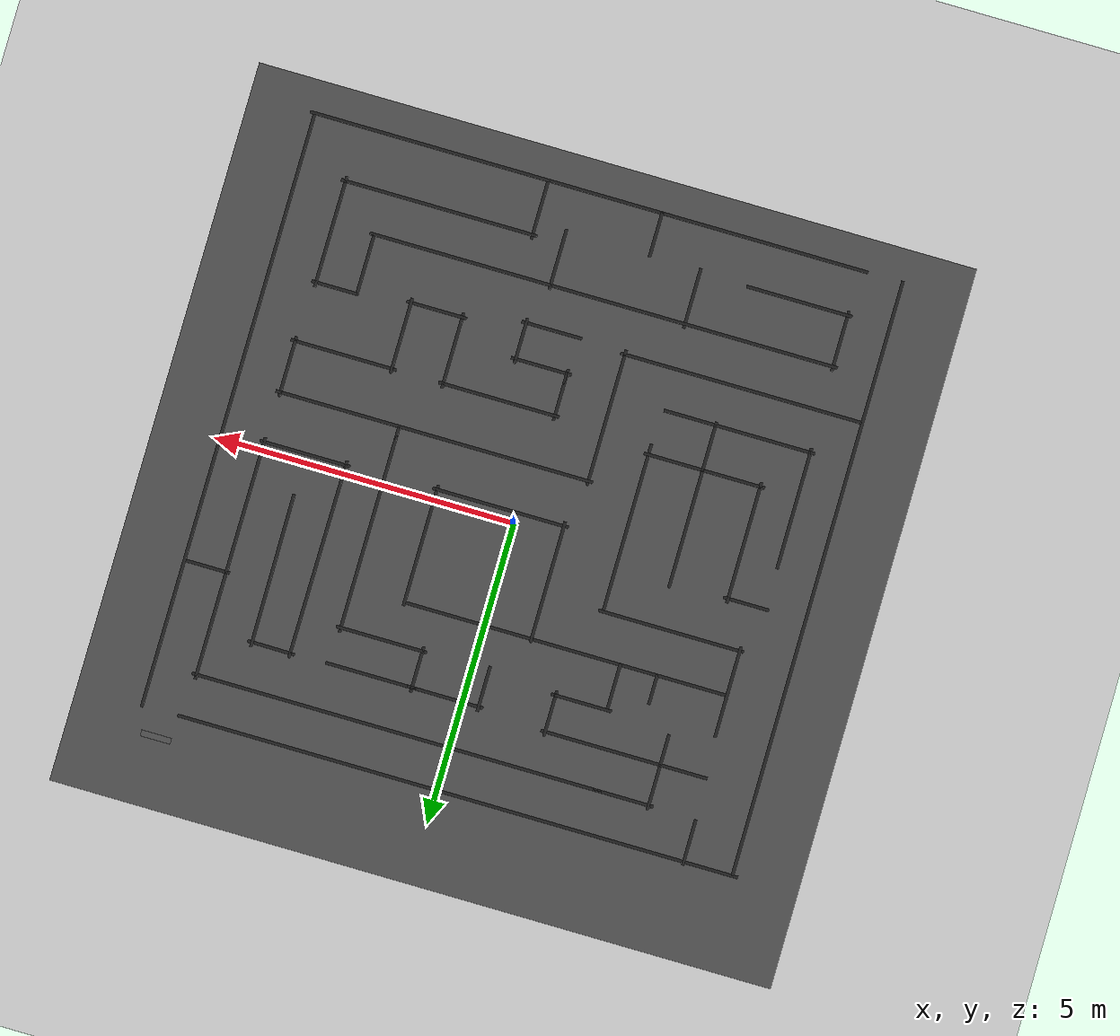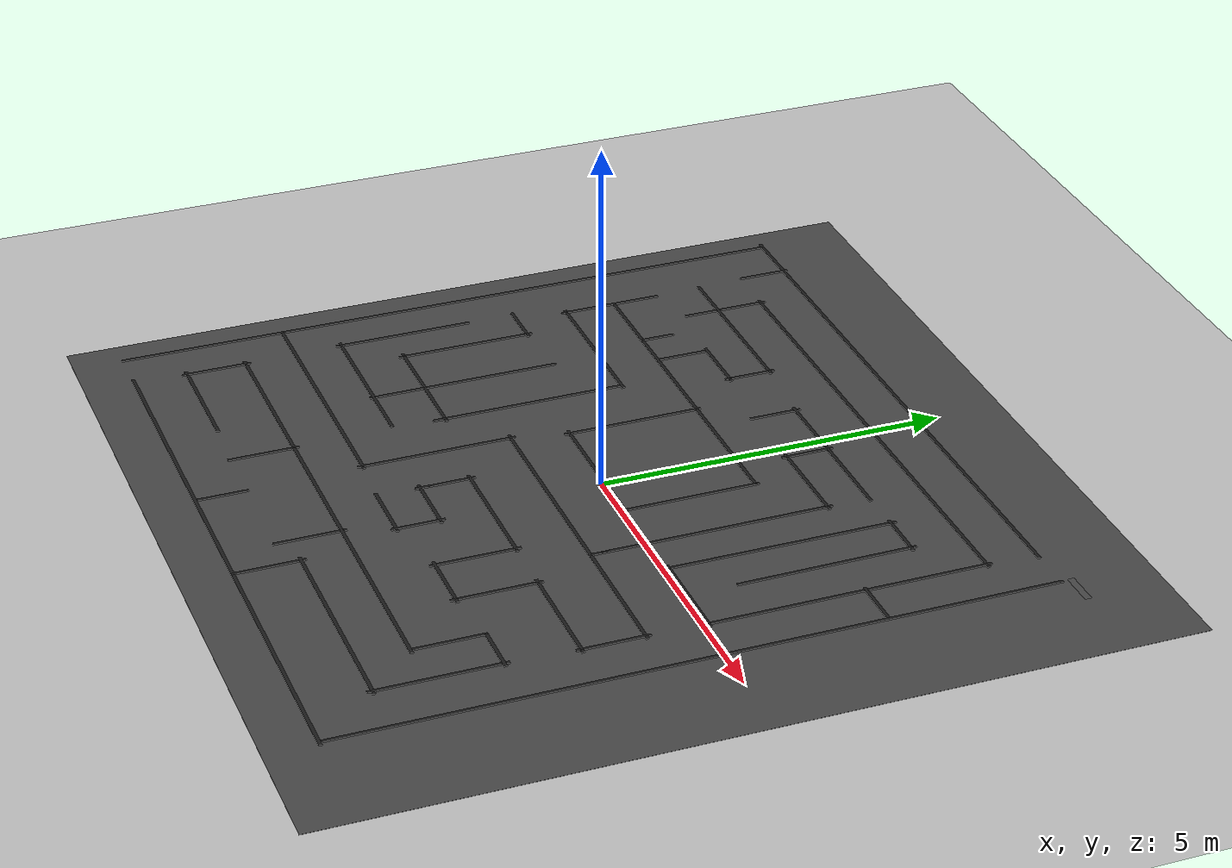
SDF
<sdf version="1.6">
 <world name="default">
  <model name="ground_plane">
   <static>1</static>
   <link name="link">
    <collision name="collision">
     <geometry><plane><normal>0 0 1</normal><size>100 100</size></plane></geometry>
     <surface><friction><ode><mu>100</mu><mu2>50</mu2></ode></friction></surface>
    </collision>
    <visual name="visual">
     <cast_shadows>0</cast_shadows>
     <geometry><plane><normal>0 0 1</normal><size>100 100</size></plane></geometry>
     <material>
      <script><uri>file://media/materials/scripts/gazebo.material</uri><name>Gazebo/Grey</name></script>
     </material>
    </visual>
   </link>
  </model>
  <model name="10x10_maze_1_top">
   <pose>0 -0.5 0.4 0 -0 0</pose>
   <link name="Wall_0">
    <collision name="Wall_0_Collision">
     <geometry><box><size>9.83 0.05 0.01</size></box></geometry>
     <pose>0 0 0.005 0 -0 0</pose>
    </collision>
    <visual name="Wall_0_Visual">
     <pose>0 0 0.005 0 -0 0</pose>
     <geometry><box><size>9.83 0.05 0.01</size></box></geometry>
     <material>
      <script><uri>file://media/materials/scripts/gazebo.material</uri><name>Gazebo/Black</name></script>
      <ambient>0 0 0 1</ambient>
     </material>
    </visual>
    <pose>-4.87625 -0.01472 0 0 0 -1.5708</pose>
   </link>
   <link name="Wall_103">
    <collision name="Wall_103_Collision">
     <geometry><box><size>0.5 0.05 0.01</size></box></geometry>
     <pose>0 0 0.005 0 -0 0</pose>
    </collision>
    <visual name="Wall_103_Visual">
     <pose>0 0 0.005 0 -0 0</pose>
     <geometry><box><size>0.5 0.05 0.01</size></box></geometry>
     <material>
      <script><uri>file://media/materials/scripts/gazebo.material</uri><name>Gazebo/Black</name></script>
      <ambient>0 0 0 1</ambient>
     </material>
    </visual>
    <pose>-2.85325 2.41853 0 0 -0 1.5708</pose>
   </link>
   <link name="Wall_106">
    <collision name="Wall_106_Collision">
     <geometry><box><size>6.77039 0.05 0.01</size></box></geometry>
     <pose>0 0 0.005 0 -0 0</pose>
    </collision>
    <visual name="Wall_106_Visual">
     <pose>0 0 0.005 0 -0 0</pose>
     <geometry><box><size>6.77039 0.05 0.01</size></box></geometry>
     <material>
      <script><uri>file://media/materials/scripts/gazebo.material</uri><name>Gazebo/Black</name></script>
      <ambient>0 0 0 1</ambient>
     </material>
    </visual>
    <pose>0.865745 4.20453 0 0 -0 0</pose>
   </link>
   <link name="Wall_107">
    <collision name="Wall_107_Collision">
     <geometry><box><size>4 0.05 0.01</size></box></geometry>
     <pose>0 0 0.005 0 -0 0</pose>
    </collision>
    <visual name="Wall_107_Visual">
     <pose>0 0 0.005 0 -0 0</pose>
     <geometry><box><size>4 0.05 0.01</size></box></geometry>
     <material>
      <script><uri>file://media/materials/scripts/gazebo.material</uri><name>Gazebo/Black</name></script>
      <ambient>0 0 0 1</ambient>
     </material>
    </visual>
    <pose>4.17575 2.27953 0 0 0 -1.5708</pose>
   </link>
   <link name="Wall_108">
    <collision name="Wall_108_Collision">
     <geometry><box><size>1.5 0.05 0.01</size></box></geometry>
     <pose>0 0 0.005 0 -0 0</pose>
    </collision>
    <visual name="Wall_108_Visual">
     <pose>0 0 0.005 0 -0 0</pose>
     <geometry><box><size>1.5 0.05 0.01</size></box></geometry>
     <material>
      <script><uri>file://media/materials/scripts/gazebo.material</uri><name>Gazebo/Black</name></script>
      <ambient>0 0 0 1</ambient>
     </material>
    </visual>
    <pose>3.50075 0.354528 0 0 -0 3.14159</pose>
   </link>
   <link name="Wall_109">
    <collision name="Wall_109_Collision">
     <geometry><box><size>3.26525 0.05 0.01</size></box></geometry>
     <pose>0 0 0.005 0 -0 0</pose>
    </collision>
    <visual name="Wall_109_Visual">
     <pose>0 0 0.005 0 -0 0</pose>
     <geometry><box><size>3.26525 0.05 0.01</size></box></geometry>
     <material>
      <script><uri>file://media/materials/scripts/gazebo.material</uri><name>Gazebo/Black</name></script>
      <ambient>0 0 0 1</ambient>
     </material>
    </visual>
    <pose>2.83324 1.91203 0 0 -0 1.56598</pose>
   </link>
   <link name="Wall_110">
    <collision name="Wall_110_Collision">
     <geometry><box><size>0.779601 0.05 0.01</size></box></geometry>
     <pose>0 0 0.005 0 -0 0</pose>
    </collision>
    <visual name="Wall_110_Visual">
     <pose>0 0 0.005 0 -0 0</pose>
     <geometry><box><size>0.779601 0.05 0.01</size></box></geometry>
     <material>
      <script><uri>file://media/materials/scripts/gazebo.material</uri><name>Gazebo/Black</name></script>
      <ambient>0 0 0 1</ambient>
     </material>
    </visual>
    <pose>3.15575 3.46703 0 0 0 -0.007936</pose>
   </link>
   <link name="Wall_111">
    <collision name="Wall_111_Collision">
     <geometry><box><size>2.51521 0.05 0.01</size></box></geometry>
     <pose>0 0 0.005 0 -0 0</pose>
    </collision>
    <visual name="Wall_111_Visual">
     <pose>0 0 0.005 0 -0 0</pose>
     <geometry><box><size>2.51521 0.05 0.01</size></box></geometry>
     <material>
      <script><uri>file://media/materials/scripts/gazebo.material</uri><name>Gazebo/Black</name></script>
      <ambient>0 0 0 1</ambient>
     </material>
    </visual>
    <pose>3.47824 2.28213 0 0 0 -1.56445</pose>
   </link>
   <link name="Wall_113">
    <collision name="Wall_113_Collision">
     <geometry><box><size>1.5 0.05 0.01</size></box></geometry>
     <pose>0 0 0.005 0 -0 0</pose>
    </collision>
    <visual name="Wall_113_Visual">
     <pose>0 0 0.005 0 -0 0</pose>
     <geometry><box><size>1.5 0.05 0.01</size></box></geometry>
     <material>
      <script><uri>file://media/materials/scripts/gazebo.material</uri><name>Gazebo/Black</name></script>
      <ambient>0 0 0 1</ambient>
     </material>
    </visual>
    <pose>1.50675 2.85353 0 0 -0 3.14159</pose>
   </link>
   <link name="Wall_114">
    <collision name="Wall_114_Collision">
     <geometry><box><size>0.75 0.05 0.01</size></box></geometry>
     <pose>0 0 0.005 0 -0 0</pose>
    </collision>
    <visual name="Wall_114_Visual">
     <pose>0 0 0.005 0 -0 0</pose>
     <geometry><box><size>0.75 0.05 0.01</size></box></geometry>
     <material>
      <script><uri>file://media/materials/scripts/gazebo.material</uri><name>Gazebo/Black</name></script>
      <ambient>0 0 0 1</ambient>
     </material>
    </visual>
    <pose>0.831745 3.15353 0 0 -0 1.5708</pose>
   </link>
   <link name="Wall_115">
    <collision name="Wall_115_Collision">
     <geometry><box><size>1.25 0.05 0.01</size></box></geometry>
     <pose>0 0 0.005 0 -0 0</pose>
    </collision>
    <visual name="Wall_115_Visual">
     <pose>0 0 0.005 0 -0 0</pose>
     <geometry><box><size>1.25 0.05 0.01</size></box></geometry>
     <material>
      <script><uri>file://media/materials/scripts/gazebo.material</uri><name>Gazebo/Black</name></script>
      <ambient>0 0 0 1</ambient>
     </material>
    </visual>
    <pose>0.281745 3.45353 0 0 -0 3.14159</pose>
   </link>
   <link name="Wall_116">
    <collision name="Wall_116_Collision">
     <geometry><box><size>0.75 0.05 0.01</size></box></geometry>
     <pose>0 0 0.005 0 -0 0</pose>
    </collision>
    <visual name="Wall_116_Visual">
     <pose>0 0 0.005 0 -0 0</pose>
     <geometry><box><size>0.75 0.05 0.01</size></box></geometry>
     <material>
      <script><uri>file://media/materials/scripts/gazebo.material</uri><name>Gazebo/Black</name></script>
      <ambient>0 0 0 1</ambient>
     </material>
    </visual>
    <pose>-0.268255 3.15353 0 0 0 -1.5708</pose>
   </link>
   <link name="Wall_118">
    <collision name="Wall_118_Collision">
     <geometry><box><size>1.5 0.05 0.01</size></box></geometry>
     <pose>0 0 0.005 0 -0 0</pose>
    </collision>
    <visual name="Wall_118_Visual">
     <pose>0 0 0.005 0 -0 0</pose>
     <geometry><box><size>1.5 0.05 0.01</size></box></geometry>
     <material>
      <script><uri>file://media/materials/scripts/gazebo.material</uri><name>Gazebo/Black</name></script>
      <ambient>0 0 0 1</ambient>
     </material>
    </visual>
    <pose>1.50675 3.45353 0 0 -0 0</pose>
   </link>
   <link name="Wall_122">
    <collision name="Wall_122_Collision">
     <geometry><box><size>1 0.05 0.01</size></box></geometry>
     <pose>0 0 0.005 0 -0 0</pose>
    </collision>
    <visual name="Wall_122_Visual">
     <pose>0 0 0.005 0 -0 0</pose>
     <geometry><box><size>1 0.05 0.01</size></box></geometry>
     <material>
      <script><uri>file://media/materials/scripts/gazebo.material</uri><name>Gazebo/Black</name></script>
      <ambient>0 0 0 1</ambient>
     </material>
    </visual>
    <pose>-2.86925 4.20453 0 0 -0 3.14159</pose>
   </link>
   <link name="Wall_123">
    <collision name="Wall_123_Collision">
     <geometry><box><size>1.25 0.05 0.01</size></box></geometry>
     <pose>0 0 0.005 0 -0 0</pose>
    </collision>
    <visual name="Wall_123_Visual">
     <pose>0 0 0.005 0 -0 0</pose>
     <geometry><box><size>1.25 0.05 0.01</size></box></geometry>
     <material>
      <script><uri>file://media/materials/scripts/gazebo.material</uri><name>Gazebo/Black</name></script>
      <ambient>0 0 0 1</ambient>
     </material>
    </visual>
    <pose>-3.29426 3.65453 0 0 0 -1.5708</pose>
   </link>
   <link name="Wall_125">
    <collision name="Wall_125_Collision">
     <geometry><box><size>0.75 0.05 0.01</size></box></geometry>
     <pose>0 0 0.005 0 -0 0</pose>
    </collision>
    <visual name="Wall_125_Visual">
     <pose>0 0 0.005 0 -0 0</pose>
     <geometry><box><size>0.75 0.05 0.01</size></box></geometry>
     <material>
      <script><uri>file://media/materials/scripts/gazebo.material</uri><name>Gazebo/Black</name></script>
      <ambient>0 0 0 1</ambient>
     </material>
    </visual>
    <pose>4.49375 2.51153 0 0 -0 0</pose>
   </link>
   <link name="Wall_134">
    <collision name="Wall_134_Collision">
     <geometry><box><size>0.75 0.05 0.01</size></box></geometry>
     <pose>0 0 0.005 0 -0 0</pose>
    </collision>
    <visual name="Wall_134_Visual">
     <pose>0 0 0.005 0 -0 0</pose>
     <geometry><box><size>0.75 0.05 0.01</size></box></geometry>
     <material>
      <script><uri>file://media/materials/scripts/gazebo.material</uri><name>Gazebo/Black</name></script>
      <ambient>0 0 0 1</ambient>
     </material>
    </visual>
    <pose>-3.89825 0.701528 0 0 -0 3.14159</pose>
   </link>
   <link name="Wall_136">
    <collision name="Wall_136_Collision">
     <geometry><box><size>5.32 0.05 0.01</size></box></geometry>
     <pose>0 0 0.005 0 -0 0</pose>
    </collision>
    <visual name="Wall_136_Visual">
     <pose>0 0 0.005 0 -0 0</pose>
     <geometry><box><size>5.32 0.05 0.01</size></box></geometry>
     <material>
      <script><uri>file://media/materials/scripts/gazebo.material</uri><name>Gazebo/Black</name></script>
      <ambient>0 0 0 1</ambient>
     </material>
    </visual>
    <pose>-1.33126 2.18653 0 0 -0 3.14159</pose>
   </link>
   <link name="Wall_139">
    <collision name="Wall_139_Collision">
     <geometry><box><size>2.25 0.05 0.01</size></box></geometry>
     <pose>0 0 0.005 0 -0 0</pose>
    </collision>
    <visual name="Wall_139_Visual">
     <pose>0 0 0.005 0 -0 0</pose>
     <geometry><box><size>2.25 0.05 0.01</size></box></geometry>
     <material>
      <script><uri>file://media/materials/scripts/gazebo.material</uri><name>Gazebo/Black</name></script>
      <ambient>0 0 0 1</ambient>
     </material>
    </visual>
    <pose>0.274745 0.319528 0 0 -0 0</pose>
   </link>
   <link name="Wall_14">
    <collision name="Wall_14_Collision">
     <geometry><box><size>7.75 0.05 0.01</size></box></geometry>
     <pose>0 0 0.005 0 -0 0</pose>
    </collision>
    <visual name="Wall_14_Visual">
     <pose>0 0 0.005 0 -0 0</pose>
     <geometry><box><size>7.75 0.05 0.01</size></box></geometry>
     <material>
      <script><uri>file://media/materials/scripts/gazebo.material</uri><name>Gazebo/Black</name></script>
      <ambient>0 0 0 1</ambient>
     </material>
    </visual>
    <pose>-0.382255 -3.30847 0 0 -0 3.14159</pose>
   </link>
   <link name="Wall_140">
    <collision name="Wall_140_Collision">
     <geometry><box><size>2 0.05 0.01</size></box></geometry>
     <pose>0 0 0.005 0 -0 0</pose>
    </collision>
    <visual name="Wall_140_Visual">
     <pose>0 0 0.005 0 -0 0</pose>
     <geometry><box><size>2 0.05 0.01</size></box></geometry>
     <material>
      <script><uri>file://media/materials/scripts/gazebo.material</uri><name>Gazebo/Black</name></script>
      <ambient>0 0 0 1</ambient>
     </material>
    </visual>
    <pose>1.32475 1.24453 0 0 -0 1.5708</pose>
   </link>
   <link name="Wall_143">
    <collision name="Wall_143_Collision">
     <geometry><box><size>1 0.05 0.01</size></box></geometry>
     <pose>0 0 0.005 0 -0 0</pose>
    </collision>
    <visual name="Wall_143_Visual">
     <pose>0 0 0.005 0 -0 0</pose>
     <geometry><box><size>1 0.05 0.01</size></box></geometry>
     <material>
      <script><uri>file://media/materials/scripts/gazebo.material</uri><name>Gazebo/Black</name></script>
      <ambient>0 0 0 1</ambient>
     </material>
    </visual>
    <pose>-4.18225 -3.73347 0 0 0 -1.5708</pose>
   </link>
   <link name="Wall_144">
    <collision name="Wall_144_Collision">
     <geometry><box><size>1.75 0.05 0.01</size></box></geometry>
     <pose>0 0 0.005 0 -0 0</pose>
    </collision>
    <visual name="Wall_144_Visual">
     <pose>0 0 0.005 0 -0 0</pose>
     <geometry><box><size>1.75 0.05 0.01</size></box></geometry>
     <material>
      <script><uri>file://media/materials/scripts/gazebo.material</uri><name>Gazebo/Black</name></script>
      <ambient>0 0 0 1</ambient>
     </material>
    </visual>
    <pose>-3.38225 -4.15847 0 0 -0 0</pose>
   </link>
   <link name="Wall_146">
    <collision name="Wall_146_Collision">
     <geometry><box><size>1 0.05 0.01</size></box></geometry>
     <pose>0 0 0.005 0 -0 0</pose>
    </collision>
    <visual name="Wall_146_Visual">
     <pose>0 0 0.005 0 -0 0</pose>
     <geometry><box><size>1 0.05 0.01</size></box></geometry>
     <material>
      <script><uri>file://media/materials/scripts/gazebo.material</uri><name>Gazebo/Black</name></script>
      <ambient>0 0 0 1</ambient>
     </material>
    </visual>
    <pose>-1.73026 -3.73547 0 0 0 -1.5708</pose>
   </link>
   <link name="Wall_149">
    <collision name="Wall_149_Collision">
     <geometry><box><size>0.75 0.05 0.01</size></box></geometry>
     <pose>0 0 0.005 0 -0 0</pose>
    </collision>
    <visual name="Wall_149_Visual">
     <pose>0 0 0.005 0 -0 0</pose>
     <geometry><box><size>0.75 0.05 0.01</size></box></geometry>
     <material>
      <script><uri>file://media/materials/scripts/gazebo.material</uri><name>Gazebo/Black</name></script>
      <ambient>0 0 0 1</ambient>
     </material>
    </visual>
    <pose>-0.892255 -4.55247 0 0 -0 1.5708</pose>
   </link>
   <link name="Wall_151">
    <collision name="Wall_151_Collision">
     <geometry><box><size>1 0.05 0.01</size></box></geometry>
     <pose>0 0 0.005 0 -0 0</pose>
    </collision>
    <visual name="Wall_151_Visual">
     <pose>0 0 0.005 0 -0 0</pose>
     <geometry><box><size>1 0.05 0.01</size></box></geometry>
     <material>
      <script><uri>file://media/materials/scripts/gazebo.material</uri><name>Gazebo/Black</name></script>
      <ambient>0 0 0 1</ambient>
     </material>
    </visual>
    <pose>0.49745 -3.7387 0 0 0 -1.5708</pose>
   </link>
   <link name="Wall_153">
    <collision name="Wall_153_Collision">
     <geometry><box><size>1 0.05 0.01</size></box></geometry>
     <pose>0 0 0.005 0 -0 0</pose>
    </collision>
    <visual name="Wall_153_Visual">
     <pose>0 0 0.005 0 -0 0</pose>
     <geometry><box><size>1 0.05 0.01</size></box></geometry>
     <material>
      <script><uri>file://media/materials/scripts/gazebo.material</uri><name>Gazebo/Black</name></script>
      <ambient>0 0 0 1</ambient>
     </material>
    </visual>
    <pose>0.993745 -4.42747 0 0 -0 1.5708</pose>
   </link>
   <link name="Wall_154">
    <collision name="Wall_154_Collision">
     <geometry><box><size>3.25 0.05 0.01</size></box></geometry>
     <pose>0 0 0.005 0 -0 0</pose>
    </collision>
    <visual name="Wall_154_Visual">
     <pose>0 0 0.005 0 -0 0</pose>
     <geometry><box><size>3.25 0.05 0.01</size></box></geometry>
     <material>
      <script><uri>file://media/materials/scripts/gazebo.material</uri><name>Gazebo/Black</name></script>
      <ambient>0 0 0 1</ambient>
     </material>
    </visual>
    <pose>2.54374 -4.00247 0 0 -0 0</pose>
   </link>
   <link name="Wall_155">
    <collision name="Wall_155_Collision">
     <geometry><box><size>1.83502 0.05 0.01</size></box></geometry>
     <pose>0 0 0.005 0 -0 0</pose>
    </collision>
    <visual name="Wall_155_Visual">
     <pose>0 0 0.005 0 -0 0</pose>
     <geometry><box><size>1.83502 0.05 0.01</size></box></geometry>
     <material>
      <script><uri>file://media/materials/scripts/gazebo.material</uri><name>Gazebo/Black</name></script>
      <ambient>0 0 0 1</ambient>
     </material>
    </visual>
    <pose>4.09489 -3.15997 0 0 -0 1.56944</pose>
   </link>
   <link name="Wall_16">
    <collision name="Wall_16_Collision">
     <geometry><box><size>4 0.05 0.01</size></box></geometry>
     <pose>0 0 0.005 0 -0 0</pose>
    </collision>
    <visual name="Wall_16_Visual">
     <pose>0 0 0.005 0 -0 0</pose>
     <geometry><box><size>4 0.05 0.01</size></box></geometry>
     <material>
      <script><uri>file://media/materials/scripts/gazebo.material</uri><name>Gazebo/Black</name></script>
      <ambient>0 0 0 1</ambient>
     </material>
    </visual>
    <pose>-2.87325 -2.57647 0 0 -0 0</pose>
   </link>
   <link name="Wall_168">
    <collision name="Wall_168_Collision">
     <geometry><box><size>2.3965 0.05 0.01</size></box></geometry>
     <pose>0 0 0.005 0 -0 0</pose>
    </collision>
    <visual name="Wall_168_Visual">
     <pose>0 0 0.005 0 -0 0</pose>
     <geometry><box><size>2.3965 0.05 0.01</size></box></geometry>
     <material>
      <script><uri>file://media/materials/scripts/gazebo.material</uri><name>Gazebo/Black</name></script>
      <ambient>0 0 0 1</ambient>
     </material>
    </visual>
    <pose>-2.8715 1.45153 0 0 -0 3.14159</pose>
   </link>
   <link name="Wall_169">
    <collision name="Wall_169_Collision">
     <geometry><box><size>1.5 0.05 0.01</size></box></geometry>
     <pose>0 0 0.005 0 -0 0</pose>
    </collision>
    <visual name="Wall_169_Visual">
     <pose>0 0 0.005 0 -0 0</pose>
     <geometry><box><size>1.5 0.05 0.01</size></box></geometry>
     <material>
      <script><uri>file://media/materials/scripts/gazebo.material</uri><name>Gazebo/Black</name></script>
      <ambient>0 0 0 1</ambient>
     </material>
    </visual>
    <pose>-4.00626 2.12653 0 0 -0 1.5708</pose>
   </link>
   <link name="Wall_173">
    <collision name="Wall_173_Collision">
     <geometry><box><size>0.75 0.05 0.01</size></box></geometry>
     <pose>0 0 0.005 0 -0 0</pose>
    </collision>
    <visual name="Wall_173_Visual">
     <pose>0 0 0.005 0 -0 0</pose>
     <geometry><box><size>0.75 0.05 0.01</size></box></geometry>
     <material>
      <script><uri>file://media/materials/scripts/gazebo.material</uri><name>Gazebo/Black</name></script>
      <ambient>0 0 0 1</ambient>
     </material>
    </visual>
    <pose>3.79388 -2.31747 0 0 -0 3.14159</pose>
   </link>
   <link name="Wall_175">
    <collision name="Wall_175_Collision">
     <geometry><box><size>1 0.05 0.01</size></box></geometry>
     <pose>0 0 0.005 0 -0 0</pose>
    </collision>
    <visual name="Wall_175_Visual">
     <pose>0 0 0.005 0 -0 0</pose>
     <geometry><box><size>1 0.05 0.01</size></box></geometry>
     <material>
      <script><uri>file://media/materials/scripts/gazebo.material</uri><name>Gazebo/Black</name></script>
      <ambient>0 0 0 1</ambient>
     </material>
    </visual>
    <pose>3.41775 -2.79347 0 0 -0 1.5708</pose>
   </link>
   <link name="Wall_3">
    <collision name="Wall_3_Collision">
     <geometry><box><size>9.25 0.05 0.01</size></box></geometry>
     <pose>0 0 0.005 0 -0 0</pose>
    </collision>
    <visual name="Wall_3_Visual">
     <pose>0 0 0.005 0 -0 0</pose>
     <geometry><box><size>9.25 0.05 0.01</size></box></geometry>
     <material>
      <script><uri>file://media/materials/scripts/gazebo.material</uri><name>Gazebo/Black</name></script>
      <ambient>0 0 0 1</ambient>
     </material>
    </visual>
    <pose>0.317745 -4.90847 0 0 -0 0</pose>
   </link>
   <link name="Wall_32">
    <collision name="Wall_32_Collision">
     <geometry><box><size>2.25 0.05 0.01</size></box></geometry>
     <pose>0 0 0.005 0 -0 0</pose>
    </collision>
    <visual name="Wall_32_Visual">
     <pose>0 0 0.005 0 -0 0</pose>
     <geometry><box><size>2.25 0.05 0.01</size></box></geometry>
     <material>
      <script><uri>file://media/materials/scripts/gazebo.material</uri><name>Gazebo/Black</name></script>
      <ambient>0 0 0 1</ambient>
     </material>
    </visual>
    <pose>-0.948255 -1.52647 0 0 -0 1.5708</pose>
   </link>
   <link name="Wall_33">
    <collision name="Wall_33_Collision">
     <geometry><box><size>5.25 0.05 0.01</size></box></geometry>
     <pose>0 0 0.005 0 -0 0</pose>
    </collision>
    <visual name="Wall_33_Visual">
     <pose>0 0 0.005 0 -0 0</pose>
     <geometry><box><size>5.25 0.05 0.01</size></box></geometry>
     <material>
      <script><uri>file://media/materials/scripts/gazebo.material</uri><name>Gazebo/Black</name></script>
      <ambient>0 0 0 1</ambient>
     </material>
    </visual>
    <pose>1.60174 -0.476472 0 0 -0 0</pose>
   </link>
   <link name="Wall_34">
    <collision name="Wall_34_Collision">
     <geometry><box><size>1 0.05 0.01</size></box></geometry>
     <pose>0 0 0.005 0 -0 0</pose>
    </collision>
    <visual name="Wall_34_Visual">
     <pose>0 0 0.005 0 -0 0</pose>
     <geometry><box><size>1 0.05 0.01</size></box></geometry>
     <material>
      <script><uri>file://media/materials/scripts/gazebo.material</uri><name>Gazebo/Black</name></script>
      <ambient>0 0 0 1</ambient>
     </material>
    </visual>
    <pose>4.15175 -0.901472 0 0 0 -1.5708</pose>
   </link>
   <link name="Wall_35">
    <collision name="Wall_35_Collision">
     <geometry><box><size>1.75 0.05 0.01</size></box></geometry>
     <pose>0 0 0.005 0 -0 0</pose>
    </collision>
    <visual name="Wall_35_Visual">
     <pose>0 0 0.005 0 -0 0</pose>
     <geometry><box><size>1.75 0.05 0.01</size></box></geometry>
     <material>
      <script><uri>file://media/materials/scripts/gazebo.material</uri><name>Gazebo/Black</name></script>
      <ambient>0 0 0 1</ambient>
     </material>
    </visual>
    <pose>3.35175 -1.32647 0 0 -0 3.14159</pose>
   </link>
   <link name="Wall_36">
    <collision name="Wall_36_Collision">
     <geometry><box><size>1.25 0.05 0.01</size></box></geometry>
     <pose>0 0 0.005 0 -0 0</pose>
    </collision>
    <visual name="Wall_36_Visual">
     <pose>0 0 0.005 0 -0 0</pose>
     <geometry><box><size>1.25 0.05 0.01</size></box></geometry>
     <material>
      <script><uri>file://media/materials/scripts/gazebo.material</uri><name>Gazebo/Black</name></script>
      <ambient>0 0 0 1</ambient>
     </material>
    </visual>
    <pose>2.55174 -1.87647 0 0 0 -1.5708</pose>
   </link>
   <link name="Wall_37">
    <collision name="Wall_37_Collision">
     <geometry><box><size>1 0.05 0.01</size></box></geometry>
     <pose>0 0 0.005 0 -0 0</pose>
    </collision>
    <visual name="Wall_37_Visual">
     <pose>0 0 0.005 0 -0 0</pose>
     <geometry><box><size>1 0.05 0.01</size></box></geometry>
     <material>
      <script><uri>file://media/materials/scripts/gazebo.material</uri><name>Gazebo/Black</name></script>
      <ambient>0 0 0 1</ambient>
     </material>
    </visual>
    <pose>2.12675 -2.42647 0 0 -0 3.14159</pose>
   </link>
   <link name="Wall_38">
    <collision name="Wall_38_Collision">
     <geometry><box><size>1.25 0.05 0.01</size></box></geometry>
     <pose>0 0 0.005 0 -0 0</pose>
    </collision>
    <visual name="Wall_38_Visual">
     <pose>0 0 0.005 0 -0 0</pose>
     <geometry><box><size>1.25 0.05 0.01</size></box></geometry>
     <material>
      <script><uri>file://media/materials/scripts/gazebo.material</uri><name>Gazebo/Black</name></script>
      <ambient>0 0 0 1</ambient>
     </material>
    </visual>
    <pose>1.70175 -1.87647 0 0 -0 1.5708</pose>
   </link>
   <link name="Wall_39">
    <collision name="Wall_39_Collision">
     <geometry><box><size>2 0.05 0.01</size></box></geometry>
     <pose>0 0 0.005 0 -0 0</pose>
    </collision>
    <visual name="Wall_39_Visual">
     <pose>0 0 0.005 0 -0 0</pose>
     <geometry><box><size>2 0.05 0.01</size></box></geometry>
     <material>
      <script><uri>file://media/materials/scripts/gazebo.material</uri><name>Gazebo/Black</name></script>
      <ambient>0 0 0 1</ambient>
     </material>
    </visual>
    <pose>0.776745 -1.32647 0 0 -0 3.14159</pose>
   </link>
   <link name="Wall_4">
    <collision name="Wall_4_Collision">
     <geometry><box><size>9.83 0.05 0.01</size></box></geometry>
     <pose>0 0 0.005 0 -0 0</pose>
    </collision>
    <visual name="Wall_4_Visual">
     <pose>0 0 0.005 0 -0 0</pose>
     <geometry><box><size>9.83 0.05 0.01</size></box></geometry>
     <material>
      <script><uri>file://media/materials/scripts/gazebo.material</uri><name>Gazebo/Black</name></script>
      <ambient>0 0 0 1</ambient>
     </material>
    </visual>
    <pose>4.86775 0.02628 0 0 -0 1.5708</pose>
   </link>
   <link name="Wall_40">
    <collision name="Wall_40_Collision">
     <geometry><box><size>0.753 0.05 0.01</size></box></geometry>
     <pose>0 0 0.005 0 -0 0</pose>
    </collision>
    <visual name="Wall_40_Visual">
     <pose>0 0 0.005 0 -0 0</pose>
     <geometry><box><size>0.75 0.05 0.01</size></box></geometry>
     <material>
      <script><uri>file://media/materials/scripts/gazebo.material</uri><name>Gazebo/Black</name></script>
      <ambient>0 0 0 1</ambient>
     </material>
    </visual>
    <pose>-0.148255 -1.62647 0 0 0 -1.5708</pose>
   </link>
   <link name="Wall_41">
    <collision name="Wall_41_Collision">
     <geometry><box><size>0.25 0.05 0.01</size></box></geometry>
     <pose>0 0 0.005 0 -0 0</pose>
    </collision>
    <visual name="Wall_41_Visual">
     <pose>0 0 0.005 0 -0 0</pose>
     <geometry><box><size>0.25 0.05 0.01</size></box></geometry>
     <material>
      <script><uri>file://media/materials/scripts/gazebo.material</uri><name>Gazebo/Black</name></script>
      <ambient>0 0 0 1</ambient>
     </material>
    </visual>
    <pose>-0.148255 -1.97647 0 0 0 -1.5708</pose>
   </link>
   <link name="Wall_42">
    <collision name="Wall_42_Collision">
     <geometry><box><size>1 0.05 0.01</size></box></geometry>
     <pose>0 0 0.005 0 -0 0</pose>
    </collision>
    <visual name="Wall_42_Visual">
     <pose>0 0 0.005 0 -0 0</pose>
     <geometry><box><size>1 0.05 0.01</size></box></geometry>
     <material>
      <script><uri>file://media/materials/scripts/gazebo.material</uri><name>Gazebo/Black</name></script>
      <ambient>0 0 0 1</ambient>
     </material>
    </visual>
    <pose>0.276745 -2.02647 0 0 -0 0</pose>
   </link>
   <link name="Wall_43">
    <collision name="Wall_43_Collision">
     <geometry><box><size>0.75 0.05 0.01</size></box></geometry>
     <pose>0 0 0.005 0 -0 0</pose>
    </collision>
    <visual name="Wall_43_Visual">
     <pose>0 0 0.005 0 -0 0</pose>
     <geometry><box><size>0.75 0.05 0.01</size></box></geometry>
     <material>
      <script><uri>file://media/materials/scripts/gazebo.material</uri><name>Gazebo/Black</name></script>
      <ambient>0 0 0 1</ambient>
     </material>
    </visual>
    <pose>0.701745 -2.32647 0 0 0 -1.5708</pose>
   </link>
   <link name="Wall_44">
    <collision name="Wall_44_Collision">
     <geometry><box><size>1 0.05 0.01</size></box></geometry>
     <pose>0 0 0.005 0 -0 0</pose>
    </collision>
    <visual name="Wall_44_Visual">
     <pose>0 0 0.005 0 -0 0</pose>
     <geometry><box><size>1 0.05 0.01</size></box></geometry>
     <material>
      <script><uri>file://media/materials/scripts/gazebo.material</uri><name>Gazebo/Black</name></script>
      <ambient>0 0 0 1</ambient>
     </material>
    </visual>
    <pose>0.276745 -2.62647 0 0 -0 3.14159</pose>
   </link>
   <link name="Wall_46">
    <collision name="Wall_46_Collision">
     <geometry><box><size>2 0.05 0.01</size></box></geometry>
     <pose>0 0 0.005 0 -0 0</pose>
    </collision>
    <visual name="Wall_46_Visual">
     <pose>0 0 0.005 0 -0 0</pose>
     <geometry><box><size>2 0.05 0.01</size></box></geometry>
     <material>
      <script><uri>file://media/materials/scripts/gazebo.material</uri><name>Gazebo/Black</name></script>
      <ambient>0 0 0 1</ambient>
     </material>
    </visual>
    <pose>-4.21425 -0.968472 0 0 -0 1.5708</pose>
   </link>
   <link name="Wall_6">
    <collision name="Wall_6_Collision">
     <geometry><box><size>9.25 0.05 0.01</size></box></geometry>
     <pose>0 0 0.005 0 -0 0</pose>
    </collision>
    <visual name="Wall_6_Visual">
     <pose>0 0 0.005 0 -0 0</pose>
     <geometry><box><size>9.25 0.05 0.01</size></box></geometry>
     <material>
      <script><uri>file://media/materials/scripts/gazebo.material</uri><name>Gazebo/Black</name></script>
      <ambient>0 0 0 1</ambient>
     </material>
    </visual>
    <pose>-0.343745 4.90753 0 0 -0 0</pose>
   </link>
   <link name="Wall_63">
    <collision name="Wall_63_Collision">
     <geometry><box><size>2.5 0.05 0.01</size></box></geometry>
     <pose>0 0 0.005 0 -0 0</pose>
    </collision>
    <visual name="Wall_63_Visual">
     <pose>0 0 0.005 0 -0 0</pose>
     <geometry><box><size>2.5 0.05 0.01</size></box></geometry>
     <material>
      <script><uri>file://media/materials/scripts/gazebo.material</uri><name>Gazebo/Black</name></script>
      <ambient>0 0 0 1</ambient>
     </material>
    </visual>
    <pose>-3.03925 -1.89347 0 0 -0 0</pose>
   </link>
   <link name="Wall_77">
    <collision name="Wall_77_Collision">
     <geometry><box><size>2 0.05 0.01</size></box></geometry>
     <pose>0 0 0.005 0 -0 0</pose>
    </collision>
    <visual name="Wall_77_Visual">
     <pose>0 0 0.005 0 -0 0</pose>
     <geometry><box><size>2 0.05 0.01</size></box></geometry>
     <material>
      <script><uri>file://media/materials/scripts/gazebo.material</uri><name>Gazebo/Black</name></script>
      <ambient>0 0 0 1</ambient>
     </material>
    </visual>
    <pose>-3.59825 -0.223472 0 0 0 -1.5708</pose>
   </link>
   <link name="Wall_78">
    <collision name="Wall_78_Collision">
     <geometry><box><size>2 0.05 0.01</size></box></geometry>
     <pose>0 0 0.005 0 -0 0</pose>
    </collision>
    <visual name="Wall_78_Visual">
     <pose>0 0 0.005 0 -0 0</pose>
     <geometry><box><size>2 0.05 0.01</size></box></geometry>
     <material>
      <script><uri>file://media/materials/scripts/gazebo.material</uri><name>Gazebo/Black</name></script>
      <ambient>0 0 0 1</ambient>
     </material>
    </visual>
    <pose>-2.67326 -1.14847 0 0 -0 0</pose>
   </link>
   <link name="Wall_79">
    <collision name="Wall_79_Collision">
     <geometry><box><size>2.75 0.05 0.01</size></box></geometry>
     <pose>0 0 0.005 0 -0 0</pose>
    </collision>
    <visual name="Wall_79_Visual">
     <pose>0 0 0.005 0 -0 0</pose>
     <geometry><box><size>2.75 0.05 0.01</size></box></geometry>
     <material>
      <script><uri>file://media/materials/scripts/gazebo.material</uri><name>Gazebo/Black</name></script>
      <ambient>0 0 0 1</ambient>
     </material>
    </visual>
    <pose>-1.74825 0.051528 0 0 -0 1.5708</pose>
   </link>
   <link name="Wall_85">
    <collision name="Wall_85_Collision">
     <geometry><box><size>2 0.05 0.01</size></box></geometry>
     <pose>0 0 0.005 0 -0 0</pose>
    </collision>
    <visual name="Wall_85_Visual">
     <pose>0 0 0.005 0 -0 0</pose>
     <geometry><box><size>2 0.05 0.01</size></box></geometry>
     <material>
      <script><uri>file://media/materials/scripts/gazebo.material</uri><name>Gazebo/Black</name></script>
      <ambient>0 0 0 1</ambient>
     </material>
    </visual>
    <pose>-0.775255 1.24453 0 0 -0 1.5708</pose>
   </link>
   <link name="Wall_87">
    <collision name="Wall_87_Collision">
     <geometry><box><size>2.75 0.05 0.01</size></box></geometry>
     <pose>0 0 0.005 0 -0 0</pose>
    </collision>
    <visual name="Wall_87_Visual">
     <pose>0 0 0.005 0 -0 0</pose>
     <geometry><box><size>2.75 0.05 0.01</size></box></geometry>
     <material>
      <script><uri>file://media/materials/scripts/gazebo.material</uri><name>Gazebo/Black</name></script>
      <ambient>0 0 0 1</ambient>
     </material>
    </visual>
    <pose>-2.64626 -0.573472 0 0 -0 1.5708</pose>
   </link>
   <link name="Wall_89">
    <collision name="Wall_89_Collision">
     <geometry><box><size>3.25 0.05 0.01</size></box></geometry>
     <pose>0 0 0.005 0 -0 0</pose>
    </collision>
    <visual name="Wall_89_Visual">
     <pose>0 0 0.005 0 -0 0</pose>
     <geometry><box><size>3.25 0.05 0.01</size></box></geometry>
     <material>
      <script><uri>file://media/materials/scripts/gazebo.material</uri><name>Gazebo/Black</name></script>
      <ambient>0 0 0 1</ambient>
     </material>
    </visual>
    <pose>2.18174 1.30353 0 0 0 -1.5708</pose>
   </link>
   <link name="Wall_90">
    <collision name="Wall_90_Collision">
     <geometry><box><size>0.25 0.05 0.01</size></box></geometry>
     <pose>0 0 0.005 0 -0 0</pose>
    </collision>
    <visual name="Wall_90_Visual">
     <pose>0 0 0.005 0 -0 0</pose>
     <geometry><box><size>0.25 0.05 0.01</size></box></geometry>
     <material>
      <script><uri>file://media/materials/scripts/gazebo.material</uri><name>Gazebo/Black</name></script>
      <ambient>0 0 0 1</ambient>
     </material>
    </visual>
    <pose>2.18174 -0.346472 0 0 0 -1.5708</pose>
   </link>
   <link name="Wall_94">
    <collision name="Wall_94_Collision">
     <geometry><box><size>2.75 0.05 0.01</size></box></geometry>
     <pose>0 0 0.005 0 -0 0</pose>
    </collision>
    <visual name="Wall_94_Visual">
     <pose>0 0 0.005 0 -0 0</pose>
     <geometry><box><size>2.75 0.05 0.01</size></box></geometry>
     <material>
      <script><uri>file://media/materials/scripts/gazebo.material</uri><name>Gazebo/Black</name></script>
      <ambient>0 0 0 1</ambient>
     </material>
    </visual>
    <pose>-2.69326 3.53753 0 0 -0 0</pose>
   </link>
   <link name="Wall_95">
    <collision name="Wall_95_Collision">
     <geometry><box><size>0.75 0.05 0.01</size></box></geometry>
     <pose>0 0 0.005 0 -0 0</pose>
    </collision>
    <visual name="Wall_95_Visual">
     <pose>0 0 0.005 0 -0 0</pose>
     <geometry><box><size>0.75 0.05 0.01</size></box></geometry>
     <material>
      <script><uri>file://media/materials/scripts/gazebo.material</uri><name>Gazebo/Black</name></script>
      <ambient>0 0 0 1</ambient>
     </material>
    </visual>
    <pose>-1.39325 3.23753 0 0 0 -1.5708</pose>
   </link>
   <link name="Wall_96">
    <collision name="Wall_96_Collision">
     <geometry><box><size>1 0.05 0.01</size></box></geometry>
     <pose>0 0 0.005 0 -0 0</pose>
    </collision>
    <visual name="Wall_96_Visual">
     <pose>0 0 0.005 0 -0 0</pose>
     <geometry><box><size>1 0.05 0.01</size></box></geometry>
     <material>
      <script><uri>file://media/materials/scripts/gazebo.material</uri><name>Gazebo/Black</name></script>
      <ambient>0 0 0 1</ambient>
     </material>
    </visual>
    <pose>-1.81825 2.93753 0 0 -0 3.14159</pose>
   </link>
   <link name="Wall_97">
    <collision name="Wall_97_Collision">
     <geometry><box><size>0.75 0.05 0.01</size></box></geometry>
     <pose>0 0 0.005 0 -0 0</pose>
    </collision>
    <visual name="Wall_97_Visual">
     <pose>0 0 0.005 0 -0 0</pose>
     <geometry><box><size>0.75 0.05 0.01</size></box></geometry>
     <material>
      <script><uri>file://media/materials/scripts/gazebo.material</uri><name>Gazebo/Black</name></script>
      <ambient>0 0 0 1</ambient>
     </material>
    </visual>
    <pose>-2.24325 2.53753 0 0 0 -1.5708</pose>
   </link>
   <link name="Wall_99">
    <collision name="Wall_99_Collision">
     <geometry><box><size>0.75 0.05 0.01</size></box></geometry>
     <pose>0 0 0.005 0 -0 0</pose>
    </collision>
    <visual name="Wall_99_Visual">
     <pose>0 0 0.005 0 -0 0</pose>
     <geometry><box><size>0.75 0.05 0.01</size></box></geometry>
     <material>
      <script><uri>file://media/materials/scripts/gazebo.material</uri><name>Gazebo/Black</name></script>
      <ambient>0 0 0 1</ambient>
     </material>
    </visual>
    <pose>-4.07425 4.58553 0 0 0 -1.5708</pose>
   </link>
   <static>1</static>
  </model>
  <model name="asphalt_green_plane">
   <static>1</static>
   <link name="link">
    <collision name="collision"><geometry><box><size>0.5 0.1 0.005</size></box></geometry></collision>
    <visual name="visual">
     <cast_shadows>0</cast_shadows>
     <geometry><box><size>0.5 0.1 0.005</size></box></geometry>
     <material>
      <script>
       <uri>model://asphalt_green_plane/materials/scripts</uri>
       <uri>model://asphalt_green_plane/materials/textures</uri>
       <name>vrc/asphalt_green</name>
      </script>
     </material>
    </visual>
   </link>
   <pose>4.55922 4.86673 0.0001 0 -0 0</pose>
  </model>
  <model name="asphalt_white_plane_0">
   <static>1</static>
   <link name="link">
    <collision name="collision"><geometry><box><size>12 12 0.005</size></box></geometry></collision>
    <visual name="visual">
     <cast_shadows>0</cast_shadows>
     <geometry><box><size>12 12 0.005</size></box></geometry>
     <material>
      <script>
       <uri>model://asphalt_white_plane/materials/scripts</uri>
       <uri>model://asphalt_white_plane/materials/textures</uri>
       <name>vrc/asphalt_white</name>
      </script>
     </material>
    </visual>
   </link>
  </model>
 </world>
</sdf>
